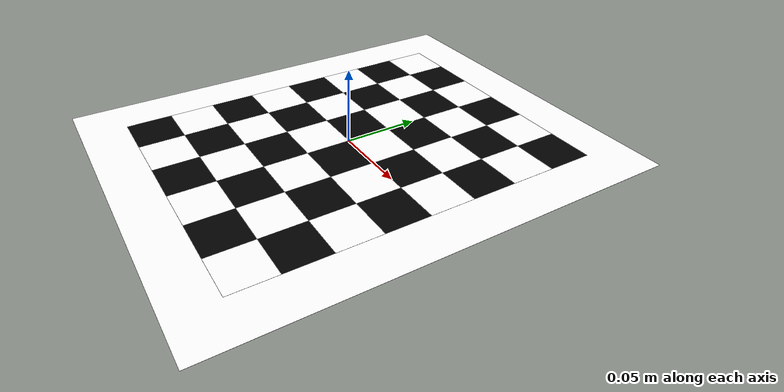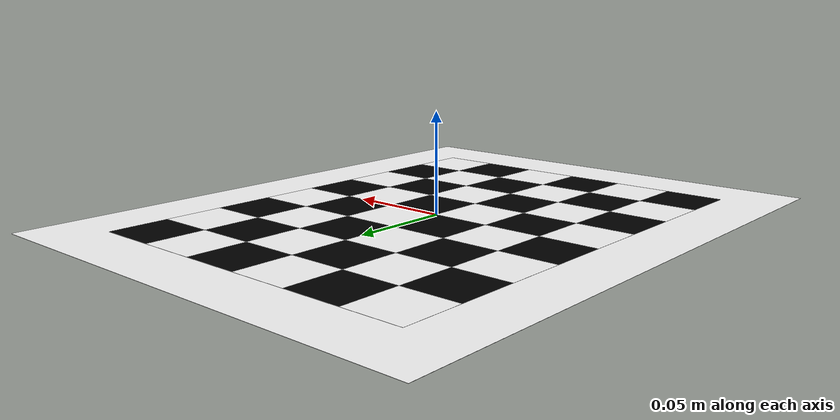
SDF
<?xml version="1.0"?>
<sdf version="1.4">
  <model name="checkerboard_6_8_0_03">
  <static>true</static>
  <link name="checkerboard_6_8_0_03_body">
      <visual name="checker_0_0">
        <pose>-0.075 -0.105 0 0 0 0</pose>
        <geometry>
          <box>
            <size>0.03 0.03 0.0002</size>
          </box>
        </geometry>
        <material>
          <ambient>0 0 0 1</ambient>
          <diffuse>0 0 0 1</diffuse>
          <specular>0 0 0 1</specular>
          <emissive>0 0 0 1</emissive>
        </material>
      </visual>
      <visual name="checker_0_1">
        <pose>-0.075 -0.075 0 0 0 0</pose>
        <geometry>
          <box>
            <size>0.03 0.03 0.0002</size>
          </box>
        </geometry>
        <material>
          <ambient>1 1 1 1</ambient>
          <diffuse>1 1 1 1</diffuse>
          <specular>1 1 1 1</specular>
          <emissive>1 1 1 1</emissive>
        </material>
      </visual>
      <visual name="checker_0_2">
        <pose>-0.075 -0.045 0 0 0 0</pose>
        <geometry>
          <box>
            <size>0.03 0.03 0.0002</size>
          </box>
        </geometry>
        <material>
          <ambient>0 0 0 1</ambient>
          <diffuse>0 0 0 1</diffuse>
          <specular>0 0 0 1</specular>
          <emissive>0 0 0 1</emissive>
        </material>
      </visual>
      <visual name="checker_0_3">
        <pose>-0.075 -0.015 0 0 0 0</pose>
        <geometry>
          <box>
            <size>0.03 0.03 0.0002</size>
          </box>
        </geometry>
        <material>
          <ambient>1 1 1 1</ambient>
          <diffuse>1 1 1 1</diffuse>
          <specular>1 1 1 1</specular>
          <emissive>1 1 1 1</emissive>
        </material>
      </visual>
      <visual name="checker_0_4">
        <pose>-0.075 0.015000000000000013 0 0 0 0</pose>
        <geometry>
          <box>
            <size>0.03 0.03 0.0002</size>
          </box>
        </geometry>
        <material>
          <ambient>0 0 0 1</ambient>
          <diffuse>0 0 0 1</diffuse>
          <specular>0 0 0 1</specular>
          <emissive>0 0 0 1</emissive>
        </material>
      </visual>
      <visual name="checker_0_5">
        <pose>-0.075 0.044999999999999984 0 0 0 0</pose>
        <geometry>
          <box>
            <size>0.03 0.03 0.0002</size>
          </box>
        </geometry>
        <material>
          <ambient>1 1 1 1</ambient>
          <diffuse>1 1 1 1</diffuse>
          <specular>1 1 1 1</specular>
          <emissive>1 1 1 1</emissive>
        </material>
      </visual>
      <visual name="checker_0_6">
        <pose>-0.075 0.07500000000000001 0 0 0 0</pose>
        <geometry>
          <box>
            <size>0.03 0.03 0.0002</size>
          </box>
        </geometry>
        <material>
          <ambient>0 0 0 1</ambient>
          <diffuse>0 0 0 1</diffuse>
          <specular>0 0 0 1</specular>
          <emissive>0 0 0 1</emissive>
        </material>
      </visual>
      <visual name="checker_0_7">
        <pose>-0.075 0.10499999999999998 0 0 0 0</pose>
        <geometry>
          <box>
            <size>0.03 0.03 0.0002</size>
          </box>
        </geometry>
        <material>
          <ambient>1 1 1 1</ambient>
          <diffuse>1 1 1 1</diffuse>
          <specular>1 1 1 1</specular>
          <emissive>1 1 1 1</emissive>
        </material>
      </visual>
      <visual name="checker_1_0">
        <pose>-0.045 -0.105 0 0 0 0</pose>
        <geometry>
          <box>
            <size>0.03 0.03 0.0002</size>
          </box>
        </geometry>
        <material>
          <ambient>1 1 1 1</ambient>
          <diffuse>1 1 1 1</diffuse>
          <specular>1 1 1 1</specular>
          <emissive>1 1 1 1</emissive>
        </material>
      </visual>
      <visual name="checker_1_1">
        <pose>-0.045 -0.075 0 0 0 0</pose>
        <geometry>
          <box>
            <size>0.03 0.03 0.0002</size>
          </box>
        </geometry>
        <material>
          <ambient>0 0 0 1</ambient>
          <diffuse>0 0 0 1</diffuse>
          <specular>0 0 0 1</specular>
          <emissive>0 0 0 1</emissive>
        </material>
      </visual>
      <visual name="checker_1_2">
        <pose>-0.045 -0.045 0 0 0 0</pose>
        <geometry>
          <box>
            <size>0.03 0.03 0.0002</size>
          </box>
        </geometry>
        <material>
          <ambient>1 1 1 1</ambient>
          <diffuse>1 1 1 1</diffuse>
          <specular>1 1 1 1</specular>
          <emissive>1 1 1 1</emissive>
        </material>
      </visual>
      <visual name="checker_1_3">
        <pose>-0.045 -0.015 0 0 0 0</pose>
        <geometry>
          <box>
            <size>0.03 0.03 0.0002</size>
          </box>
        </geometry>
        <material>
          <ambient>0 0 0 1</ambient>
          <diffuse>0 0 0 1</diffuse>
          <specular>0 0 0 1</specular>
          <emissive>0 0 0 1</emissive>
        </material>
      </visual>
      <visual name="checker_1_4">
        <pose>-0.045 0.015000000000000013 0 0 0 0</pose>
        <geometry>
          <box>
            <size>0.03 0.03 0.0002</size>
          </box>
        </geometry>
        <material>
          <ambient>1 1 1 1</ambient>
          <diffuse>1 1 1 1</diffuse>
          <specular>1 1 1 1</specular>
          <emissive>1 1 1 1</emissive>
        </material>
      </visual>
      <visual name="checker_1_5">
        <pose>-0.045 0.044999999999999984 0 0 0 0</pose>
        <geometry>
          <box>
            <size>0.03 0.03 0.0002</size>
          </box>
        </geometry>
        <material>
          <ambient>0 0 0 1</ambient>
          <diffuse>0 0 0 1</diffuse>
          <specular>0 0 0 1</specular>
          <emissive>0 0 0 1</emissive>
        </material>
      </visual>
      <visual name="checker_1_6">
        <pose>-0.045 0.07500000000000001 0 0 0 0</pose>
        <geometry>
          <box>
            <size>0.03 0.03 0.0002</size>
          </box>
        </geometry>
        <material>
          <ambient>1 1 1 1</ambient>
          <diffuse>1 1 1 1</diffuse>
          <specular>1 1 1 1</specular>
          <emissive>1 1 1 1</emissive>
        </material>
      </visual>
      <visual name="checker_1_7">
        <pose>-0.045 0.10499999999999998 0 0 0 0</pose>
        <geometry>
          <box>
            <size>0.03 0.03 0.0002</size>
          </box>
        </geometry>
        <material>
          <ambient>0 0 0 1</ambient>
          <diffuse>0 0 0 1</diffuse>
          <specular>0 0 0 1</specular>
          <emissive>0 0 0 1</emissive>
        </material>
      </visual>
      <visual name="checker_2_0">
        <pose>-0.015 -0.105 0 0 0 0</pose>
        <geometry>
          <box>
            <size>0.03 0.03 0.0002</size>
          </box>
        </geometry>
        <material>
          <ambient>0 0 0 1</ambient>
          <diffuse>0 0 0 1</diffuse>
          <specular>0 0 0 1</specular>
          <emissive>0 0 0 1</emissive>
        </material>
      </visual>
      <visual name="checker_2_1">
        <pose>-0.015 -0.075 0 0 0 0</pose>
        <geometry>
          <box>
            <size>0.03 0.03 0.0002</size>
          </box>
        </geometry>
        <material>
          <ambient>1 1 1 1</ambient>
          <diffuse>1 1 1 1</diffuse>
          <specular>1 1 1 1</specular>
          <emissive>1 1 1 1</emissive>
        </material>
      </visual>
      <visual name="checker_2_2">
        <pose>-0.015 -0.045 0 0 0 0</pose>
        <geometry>
          <box>
            <size>0.03 0.03 0.0002</size>
          </box>
        </geometry>
        <material>
          <ambient>0 0 0 1</ambient>
          <diffuse>0 0 0 1</diffuse>
          <specular>0 0 0 1</specular>
          <emissive>0 0 0 1</emissive>
        </material>
      </visual>
      <visual name="checker_2_3">
        <pose>-0.015 -0.015 0 0 0 0</pose>
        <geometry>
          <box>
            <size>0.03 0.03 0.0002</size>
          </box>
        </geometry>
        <material>
          <ambient>1 1 1 1</ambient>
          <diffuse>1 1 1 1</diffuse>
          <specular>1 1 1 1</specular>
          <emissive>1 1 1 1</emissive>
        </material>
      </visual>
      <visual name="checker_2_4">
        <pose>-0.015 0.015000000000000013 0 0 0 0</pose>
        <geometry>
          <box>
            <size>0.03 0.03 0.0002</size>
          </box>
        </geometry>
        <material>
          <ambient>0 0 0 1</ambient>
          <diffuse>0 0 0 1</diffuse>
          <specular>0 0 0 1</specular>
          <emissive>0 0 0 1</emissive>
        </material>
      </visual>
      <visual name="checker_2_5">
        <pose>-0.015 0.044999999999999984 0 0 0 0</pose>
        <geometry>
          <box>
            <size>0.03 0.03 0.0002</size>
          </box>
        </geometry>
        <material>
          <ambient>1 1 1 1</ambient>
          <diffuse>1 1 1 1</diffuse>
          <specular>1 1 1 1</specular>
          <emissive>1 1 1 1</emissive>
        </material>
      </visual>
      <visual name="checker_2_6">
        <pose>-0.015 0.07500000000000001 0 0 0 0</pose>
        <geometry>
          <box>
            <size>0.03 0.03 0.0002</size>
          </box>
        </geometry>
        <material>
          <ambient>0 0 0 1</ambient>
          <diffuse>0 0 0 1</diffuse>
          <specular>0 0 0 1</specular>
          <emissive>0 0 0 1</emissive>
        </material>
      </visual>
      <visual name="checker_2_7">
        <pose>-0.015 0.10499999999999998 0 0 0 0</pose>
        <geometry>
          <box>
            <size>0.03 0.03 0.0002</size>
          </box>
        </geometry>
        <material>
          <ambient>1 1 1 1</ambient>
          <diffuse>1 1 1 1</diffuse>
          <specular>1 1 1 1</specular>
          <emissive>1 1 1 1</emissive>
        </material>
      </visual>
      <visual name="checker_3_0">
        <pose>0.015 -0.105 0 0 0 0</pose>
        <geometry>
          <box>
            <size>0.03 0.03 0.0002</size>
          </box>
        </geometry>
        <material>
          <ambient>1 1 1 1</ambient>
          <diffuse>1 1 1 1</diffuse>
          <specular>1 1 1 1</specular>
          <emissive>1 1 1 1</emissive>
        </material>
      </visual>
      <visual name="checker_3_1">
        <pose>0.015 -0.075 0 0 0 0</pose>
        <geometry>
          <box>
            <size>0.03 0.03 0.0002</size>
          </box>
        </geometry>
        <material>
          <ambient>0 0 0 1</ambient>
          <diffuse>0 0 0 1</diffuse>
          <specular>0 0 0 1</specular>
          <emissive>0 0 0 1</emissive>
        </material>
      </visual>
      <visual name="checker_3_2">
        <pose>0.015 -0.045 0 0 0 0</pose>
        <geometry>
          <box>
            <size>0.03 0.03 0.0002</size>
          </box>
        </geometry>
        <material>
          <ambient>1 1 1 1</ambient>
          <diffuse>1 1 1 1</diffuse>
          <specular>1 1 1 1</specular>
          <emissive>1 1 1 1</emissive>
        </material>
      </visual>
      <visual name="checker_3_3">
        <pose>0.015 -0.015 0 0 0 0</pose>
        <geometry>
          <box>
            <size>0.03 0.03 0.0002</size>
          </box>
        </geometry>
        <material>
          <ambient>0 0 0 1</ambient>
          <diffuse>0 0 0 1</diffuse>
          <specular>0 0 0 1</specular>
          <emissive>0 0 0 1</emissive>
        </material>
      </visual>
      <visual name="checker_3_4">
        <pose>0.015 0.015000000000000013 0 0 0 0</pose>
        <geometry>
          <box>
            <size>0.03 0.03 0.0002</size>
          </box>
        </geometry>
        <material>
          <ambient>1 1 1 1</ambient>
          <diffuse>1 1 1 1</diffuse>
          <specular>1 1 1 1</specular>
          <emissive>1 1 1 1</emissive>
        </material>
      </visual>
      <visual name="checker_3_5">
        <pose>0.015 0.044999999999999984 0 0 0 0</pose>
        <geometry>
          <box>
            <size>0.03 0.03 0.0002</size>
          </box>
        </geometry>
        <material>
          <ambient>0 0 0 1</ambient>
          <diffuse>0 0 0 1</diffuse>
          <specular>0 0 0 1</specular>
          <emissive>0 0 0 1</emissive>
        </material>
      </visual>
      <visual name="checker_3_6">
        <pose>0.015 0.07500000000000001 0 0 0 0</pose>
        <geometry>
          <box>
            <size>0.03 0.03 0.0002</size>
          </box>
        </geometry>
        <material>
          <ambient>1 1 1 1</ambient>
          <diffuse>1 1 1 1</diffuse>
          <specular>1 1 1 1</specular>
          <emissive>1 1 1 1</emissive>
        </material>
      </visual>
      <visual name="checker_3_7">
        <pose>0.015 0.10499999999999998 0 0 0 0</pose>
        <geometry>
          <box>
            <size>0.03 0.03 0.0002</size>
          </box>
        </geometry>
        <material>
          <ambient>0 0 0 1</ambient>
          <diffuse>0 0 0 1</diffuse>
          <specular>0 0 0 1</specular>
          <emissive>0 0 0 1</emissive>
        </material>
      </visual>
      <visual name="checker_4_0">
        <pose>0.04500000000000001 -0.105 0 0 0 0</pose>
        <geometry>
          <box>
            <size>0.03 0.03 0.0002</size>
          </box>
        </geometry>
        <material>
          <ambient>0 0 0 1</ambient>
          <diffuse>0 0 0 1</diffuse>
          <specular>0 0 0 1</specular>
          <emissive>0 0 0 1</emissive>
        </material>
      </visual>
      <visual name="checker_4_1">
        <pose>0.04500000000000001 -0.075 0 0 0 0</pose>
        <geometry>
          <box>
            <size>0.03 0.03 0.0002</size>
          </box>
        </geometry>
        <material>
          <ambient>1 1 1 1</ambient>
          <diffuse>1 1 1 1</diffuse>
          <specular>1 1 1 1</specular>
          <emissive>1 1 1 1</emissive>
        </material>
      </visual>
      <visual name="checker_4_2">
        <pose>0.04500000000000001 -0.045 0 0 0 0</pose>
        <geometry>
          <box>
            <size>0.03 0.03 0.0002</size>
          </box>
        </geometry>
        <material>
          <ambient>0 0 0 1</ambient>
          <diffuse>0 0 0 1</diffuse>
          <specular>0 0 0 1</specular>
          <emissive>0 0 0 1</emissive>
        </material>
      </visual>
      <visual name="checker_4_3">
        <pose>0.04500000000000001 -0.015 0 0 0 0</pose>
        <geometry>
          <box>
            <size>0.03 0.03 0.0002</size>
          </box>
        </geometry>
        <material>
          <ambient>1 1 1 1</ambient>
          <diffuse>1 1 1 1</diffuse>
          <specular>1 1 1 1</specular>
          <emissive>1 1 1 1</emissive>
        </material>
      </visual>
      <visual name="checker_4_4">
        <pose>0.04500000000000001 0.015000000000000013 0 0 0 0</pose>
        <geometry>
          <box>
            <size>0.03 0.03 0.0002</size>
          </box>
        </geometry>
        <material>
          <ambient>0 0 0 1</ambient>
          <diffuse>0 0 0 1</diffuse>
          <specular>0 0 0 1</specular>
          <emissive>0 0 0 1</emissive>
        </material>
      </visual>
      <visual name="checker_4_5">
        <pose>0.04500000000000001 0.044999999999999984 0 0 0 0</pose>
        <geometry>
          <box>
            <size>0.03 0.03 0.0002</size>
          </box>
        </geometry>
        <material>
          <ambient>1 1 1 1</ambient>
          <diffuse>1 1 1 1</diffuse>
          <specular>1 1 1 1</specular>
          <emissive>1 1 1 1</emissive>
        </material>
      </visual>
      <visual name="checker_4_6">
        <pose>0.04500000000000001 0.07500000000000001 0 0 0 0</pose>
        <geometry>
          <box>
            <size>0.03 0.03 0.0002</size>
          </box>
        </geometry>
        <material>
          <ambient>0 0 0 1</ambient>
          <diffuse>0 0 0 1</diffuse>
          <specular>0 0 0 1</specular>
          <emissive>0 0 0 1</emissive>
        </material>
      </visual>
      <visual name="checker_4_7">
        <pose>0.04500000000000001 0.10499999999999998 0 0 0 0</pose>
        <geometry>
          <box>
            <size>0.03 0.03 0.0002</size>
          </box>
        </geometry>
        <material>
          <ambient>1 1 1 1</ambient>
          <diffuse>1 1 1 1</diffuse>
          <specular>1 1 1 1</specular>
          <emissive>1 1 1 1</emissive>
        </material>
      </visual>
      <visual name="checker_5_0">
        <pose>0.07499999999999998 -0.105 0 0 0 0</pose>
        <geometry>
          <box>
            <size>0.03 0.03 0.0002</size>
          </box>
        </geometry>
        <material>
          <ambient>1 1 1 1</ambient>
          <diffuse>1 1 1 1</diffuse>
          <specular>1 1 1 1</specular>
          <emissive>1 1 1 1</emissive>
        </material>
      </visual>
      <visual name="checker_5_1">
        <pose>0.07499999999999998 -0.075 0 0 0 0</pose>
        <geometry>
          <box>
            <size>0.03 0.03 0.0002</size>
          </box>
        </geometry>
        <material>
          <ambient>0 0 0 1</ambient>
          <diffuse>0 0 0 1</diffuse>
          <specular>0 0 0 1</specular>
          <emissive>0 0 0 1</emissive>
        </material>
      </visual>
      <visual name="checker_5_2">
        <pose>0.07499999999999998 -0.045 0 0 0 0</pose>
        <geometry>
          <box>
            <size>0.03 0.03 0.0002</size>
          </box>
        </geometry>
        <material>
          <ambient>1 1 1 1</ambient>
          <diffuse>1 1 1 1</diffuse>
          <specular>1 1 1 1</specular>
          <emissive>1 1 1 1</emissive>
        </material>
      </visual>
      <visual name="checker_5_3">
        <pose>0.07499999999999998 -0.015 0 0 0 0</pose>
        <geometry>
          <box>
            <size>0.03 0.03 0.0002</size>
          </box>
        </geometry>
        <material>
          <ambient>0 0 0 1</ambient>
          <diffuse>0 0 0 1</diffuse>
          <specular>0 0 0 1</specular>
          <emissive>0 0 0 1</emissive>
        </material>
      </visual>
      <visual name="checker_5_4">
        <pose>0.07499999999999998 0.015000000000000013 0 0 0 0</pose>
        <geometry>
          <box>
            <size>0.03 0.03 0.0002</size>
          </box>
        </geometry>
        <material>
          <ambient>1 1 1 1</ambient>
          <diffuse>1 1 1 1</diffuse>
          <specular>1 1 1 1</specular>
          <emissive>1 1 1 1</emissive>
        </material>
      </visual>
      <visual name="checker_5_5">
        <pose>0.07499999999999998 0.044999999999999984 0 0 0 0</pose>
        <geometry>
          <box>
            <size>0.03 0.03 0.0002</size>
          </box>
        </geometry>
        <material>
          <ambient>0 0 0 1</ambient>
          <diffuse>0 0 0 1</diffuse>
          <specular>0 0 0 1</specular>
          <emissive>0 0 0 1</emissive>
        </material>
      </visual>
      <visual name="checker_5_6">
        <pose>0.07499999999999998 0.07500000000000001 0 0 0 0</pose>
        <geometry>
          <box>
            <size>0.03 0.03 0.0002</size>
          </box>
        </geometry>
        <material>
          <ambient>1 1 1 1</ambient>
          <diffuse>1 1 1 1</diffuse>
          <specular>1 1 1 1</specular>
          <emissive>1 1 1 1</emissive>
        </material>
      </visual>
      <visual name="checker_5_7">
        <pose>0.07499999999999998 0.10499999999999998 0 0 0 0</pose>
        <geometry>
          <box>
            <size>0.03 0.03 0.0002</size>
          </box>
        </geometry>
        <material>
          <ambient>0 0 0 1</ambient>
          <diffuse>0 0 0 1</diffuse>
          <specular>0 0 0 1</specular>
          <emissive>0 0 0 1</emissive>
        </material>
      </visual>
      <visual name="checker_backdrop">
        <pose>0 0 0 0 0 0</pose>
        <geometry>
          <box>
            <size>0.24 0.3 0.0001</size>
          </box>
        </geometry>
        <material>
          <ambient>1 1 1 1</ambient>
          <diffuse>1 1 1 1</diffuse>
          <specular>1 1 1 1</specular>
          <emissive>1 1 1 1</emissive>
        </material>
      </visual>
    </link>
  </model>
</sdf>
